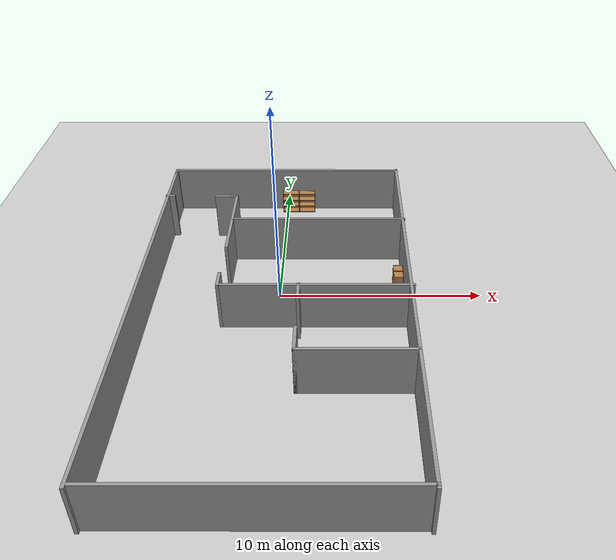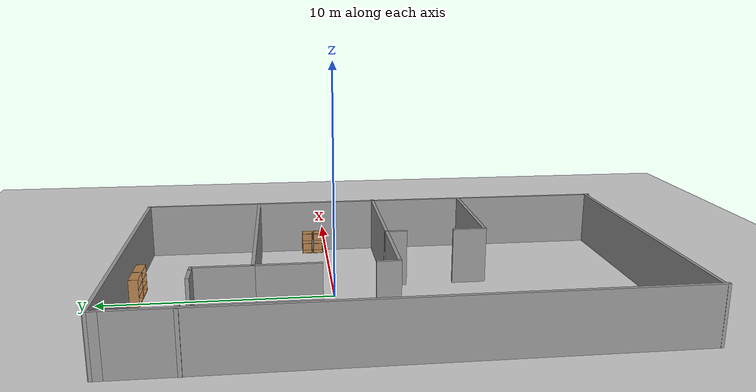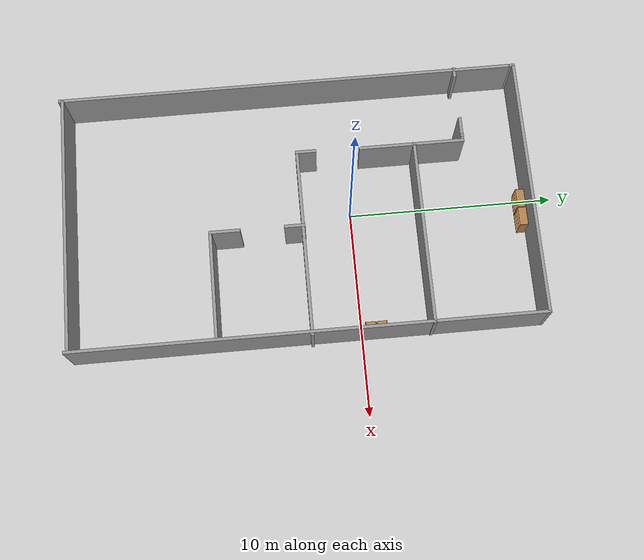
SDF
<sdf version="1.6">
 <world name="default">
  <light name="sun" type="directional">
   <pose>0 0 10 0 -0 0</pose>
   <diffuse>0.8 0.8 0.8 1</diffuse>
   <specular>0.2 0.2 0.2 1</specular>
   <attenuation>
    <range>1000</range>
    <constant>0.9</constant>
    <linear>0.01</linear>
    <quadratic>0.001</quadratic>
   </attenuation>
   <direction>-0.5 0.1 -0.9</direction>
  </light>
  <model name="ground_plane">
   <static>1</static>
   <link name="link">
    <collision name="collision">
     <geometry><plane><normal>0 0 1</normal><size>100 100</size></plane></geometry>
     <surface><friction><ode><mu>100</mu><mu2>50</mu2></ode></friction></surface>
    </collision>
    <visual name="visual">
     <cast_shadows>0</cast_shadows>
     <geometry><plane><normal>0 0 1</normal><size>100 100</size></plane></geometry>
     <material>
      <script><uri>file://media/materials/scripts/gazebo.material</uri><name>Gazebo/Grey</name></script>
     </material>
    </visual>
   </link>
  </model>
  <gravity>0 0 -9.8</gravity>
  <magnetic_field>6e-06 2.3e-05 -4.2e-05</magnetic_field>
  <atmosphere type="adiabatic"/>
  <physics name="default_physics" default="0" type="ode">
   <max_step_size>0.001</max_step_size>
   <real_time_factor>1</real_time_factor>
   <real_time_update_rate>1000</real_time_update_rate>
  </physics>
  <scene><ambient>0.4 0.4 0.4 1</ambient><background>0.7 0.7 0.7 1</background><shadows>1</shadows></scene>
  <audio><device>default</device></audio>
  <spherical_coordinates>
   <surface_model>EARTH_WGS84</surface_model>
   <latitude_deg>0</latitude_deg>
   <longitude_deg>0</longitude_deg>
   <elevation>0</elevation>
   <heading_deg>0</heading_deg>
  </spherical_coordinates>
  <model name="similar_home">
   <pose>-0.00802 -2.54677 0 0 -0 0</pose>
   <link name="Wall_36">
    <collision name="Wall_36_Collision">
     <geometry><box><size>22.2411 0.15 2.5</size></box></geometry>
     <pose>0 0 1.25 0 -0 0</pose>
    </collision>
    <visual name="Wall_36_Visual">
     <pose>0 0 1.25 0 -0 0</pose>
     <geometry><box><size>22.2411 0.15 2.5</size></box></geometry>
     <material>
      <script><uri>file://media/materials/scripts/gazebo.material</uri><name>Gazebo/Grey</name></script>
      <ambient>1 1 1 1</ambient>
     </material>
     <meta><layer>0</layer></meta>
    </visual>
    <pose>-6.31271 -0.124102 0 0 -0 -1.5708</pose>
   </link>
   <link name="Wall_37">
    <collision name="Wall_37_Collision">
     <geometry><box><size>12.6951 0.15 2.5</size></box></geometry>
     <pose>0 0 1.25 0 -0 0</pose>
    </collision>
    <visual name="Wall_37_Visual">
     <pose>0 0 1.25 0 -0 0</pose>
     <geometry><box><size>12.6951 0.15 2.5</size></box></geometry>
     <material>
      <script><uri>file://media/materials/scripts/gazebo.material</uri><name>Gazebo/Grey</name></script>
      <ambient>1 1 1 1</ambient>
     </material>
     <meta><layer>0</layer></meta>
    </visual>
    <pose>-0.040178 -11.0513 0 0 -0 -0.000367</pose>
   </link>
   <link name="Wall_38">
    <collision name="Wall_38_Collision">
     <geometry><box><size>22.4985 0.15 2.5</size></box></geometry>
     <pose>0 0 1.25 0 -0 0</pose>
    </collision>
    <visual name="Wall_38_Visual">
     <pose>0 0 1.25 0 -0 0</pose>
     <geometry><box><size>22.4985 0.15 2.5</size></box></geometry>
     <material>
      <script><uri>file://media/materials/scripts/gazebo.material</uri><name>Gazebo/Grey</name></script>
      <ambient>1 1 1 1</ambient>
     </material>
     <meta><layer>0</layer></meta>
    </visual>
    <pose>6.23236 0 0 0 -0 1.5708</pose>
   </link>
   <link name="Wall_39">
    <collision name="Wall_39_Collision">
     <geometry><box><size>12.6951 0.15 2.5</size></box></geometry>
     <pose>0 0 1.25 0 -0 0</pose>
    </collision>
    <visual name="Wall_39_Visual">
     <pose>0 0 1.25 0 -0 0</pose>
     <geometry><box><size>12.6951 0.15 2.5</size></box></geometry>
     <material>
      <script><uri>file://media/materials/scripts/gazebo.material</uri><name>Gazebo/Grey</name></script>
      <ambient>1 1 1 1</ambient>
     </material>
     <meta><layer>0</layer></meta>
    </visual>
    <pose>-0.040178 11.1692 0 0 -0 3.14123</pose>
   </link>
   <link name="Wall_40">
    <collision name="Wall_40_Collision">
     <geometry><box><size>0.5 0.15 2.5</size></box></geometry>
     <pose>0 0 1.25 0 -0 0</pose>
    </collision>
    <visual name="Wall_40_Visual">
     <pose>0 0 1.25 0 -0 0</pose>
     <geometry><box><size>0.5 0.15 2.5</size></box></geometry>
     <material>
      <script><uri>file://media/materials/scripts/gazebo.material</uri><name>Gazebo/Grey</name></script>
      <ambient>1 1 1 1</ambient>
     </material>
     <meta><layer>0</layer></meta>
    </visual>
    <pose>-6.31271 10.9965 0 0 -0 -1.5708</pose>
   </link>
   <link name="Wall_42">
    <collision name="Wall_42_Collision">
     <geometry><box><size>0.5 0.15 2.5</size></box></geometry>
     <pose>0 0 1.25 0 -0 0</pose>
    </collision>
    <visual name="Wall_42_Visual">
     <pose>0 0 1.25 0 -0 0</pose>
     <geometry><box><size>0.5 0.15 2.5</size></box></geometry>
     <material>
      <script><uri>file://media/materials/scripts/gazebo.material</uri><name>Gazebo/Grey</name></script>
      <ambient>1 1 1 1</ambient>
     </material>
     <meta><layer>0</layer></meta>
    </visual>
    <pose>-6.17716 8.22602 0 0 -0 0</pose>
   </link>
   <link name="Wall_47">
    <collision name="Wall_47_Collision">
     <geometry><box><size>0.15 0.15 2.5</size></box></geometry>
     <pose>0 0 1.25 0 -0 0</pose>
    </collision>
    <visual name="Wall_47_Visual">
     <pose>0 0 1.25 0 -0 0</pose>
     <geometry><box><size>0.15 0.15 2.5</size></box></geometry>
     <material>
      <script><uri>file://media/materials/scripts/gazebo.material</uri><name>Gazebo/Grey</name></script>
      <ambient>1 1 1 1</ambient>
     </material>
     <meta><layer>0</layer></meta>
    </visual>
    <pose>-2.82715 8.20113 0 0 -0 0</pose>
   </link>
   <link name="Wall_52">
    <collision name="Wall_52_Collision">
     <geometry><box><size>1.25 0.15 2.5</size></box></geometry>
     <pose>0 0 1.25 0 -0 0</pose>
    </collision>
    <visual name="Wall_52_Visual">
     <pose>0 0 1.25 0 -0 0</pose>
     <geometry><box><size>1.25 0.15 2.5</size></box></geometry>
     <material>
      <script><uri>file://media/materials/scripts/gazebo.material</uri><name>Gazebo/Grey</name></script>
      <ambient>1 1 1 1</ambient>
     </material>
     <meta><layer>0</layer></meta>
    </visual>
    <pose>-3.12258 8.19348 0 0 -0 0</pose>
   </link>
   <link name="Wall_53">
    <collision name="Wall_53_Collision">
     <geometry><box><size>2.5 0.15 2.5</size></box></geometry>
     <pose>0 0 1.25 0 -0 0</pose>
    </collision>
    <visual name="Wall_53_Visual">
     <pose>0 0 1.25 0 -0 0</pose>
     <geometry><box><size>2.5 0.15 2.5</size></box></geometry>
     <material>
      <script><uri>file://media/materials/scripts/gazebo.material</uri><name>Gazebo/Grey</name></script>
      <ambient>1 1 1 1</ambient>
     </material>
     <meta><layer>0</layer></meta>
    </visual>
    <pose>-2.57258 7.01849 0 0 -0 -1.5708</pose>
   </link>
   <link name="Wall_54">
    <collision name="Wall_54_Collision">
     <geometry><box><size>9 0.15 2.5</size></box></geometry>
     <pose>0 0 1.25 0 -0 0</pose>
    </collision>
    <visual name="Wall_54_Visual">
     <pose>0 0 1.25 0 -0 0</pose>
     <geometry><box><size>9 0.15 2.5</size></box></geometry>
     <material>
      <script><uri>file://media/materials/scripts/gazebo.material</uri><name>Gazebo/Grey</name></script>
      <ambient>1 1 1 1</ambient>
     </material>
     <meta><layer>0</layer></meta>
    </visual>
    <pose>1.85242 5.84348 0 0 -0 0</pose>
   </link>
   <link name="Wall_56">
    <collision name="Wall_56_Collision">
     <geometry><box><size>2.75 0.15 2.5</size></box></geometry>
     <pose>0 0 1.25 0 -0 0</pose>
    </collision>
    <visual name="Wall_56_Visual">
     <pose>0 0 1.25 0 -0 0</pose>
     <geometry><box><size>2.75 0.15 2.5</size></box></geometry>
     <material>
      <script><uri>file://media/materials/scripts/gazebo.material</uri><name>Gazebo/Grey</name></script>
      <ambient>1 1 1 1</ambient>
     </material>
     <meta><layer>0</layer></meta>
    </visual>
    <pose>-2.57258 4.54348 0 0 -0 -1.5708</pose>
   </link>
   <link name="Wall_58">
    <collision name="Wall_58_Collision">
     <geometry><box><size>9 0.15 2.5</size></box></geometry>
     <pose>0 0 1.25 0 -0 0</pose>
    </collision>
    <visual name="Wall_58_Visual">
     <pose>0 0 1.25 0 -0 0</pose>
     <geometry><box><size>9 0.15 2.5</size></box></geometry>
     <material>
      <script><uri>file://media/materials/scripts/gazebo.material</uri><name>Gazebo/Grey</name></script>
      <ambient>1 1 1 1</ambient>
     </material>
     <meta><layer>0</layer></meta>
    </visual>
    <pose>1.92716 0.163391 0 0 -0 0</pose>
   </link>
   <link name="Wall_60">
    <collision name="Wall_60_Collision">
     <geometry><box><size>1 0.15 2.5</size></box></geometry>
     <pose>0 0 1.25 0 -0 0</pose>
    </collision>
    <visual name="Wall_60_Visual">
     <pose>0 0 1.25 0 -0 0</pose>
     <geometry><box><size>1 0.15 2.5</size></box></geometry>
     <material>
      <script><uri>file://media/materials/scripts/gazebo.material</uri><name>Gazebo/Grey</name></script>
      <ambient>1 1 1 1</ambient>
     </material>
     <meta><layer>0</layer></meta>
    </visual>
    <pose>-2.62983 0.58581 0 0 -0 -1.5708</pose>
   </link>
   <link name="Wall_62">
    <collision name="Wall_62_Collision">
     <geometry><box><size>1 0.15 2.5</size></box></geometry>
     <pose>0 0 1.25 0 -0 0</pose>
    </collision>
    <visual name="Wall_62_Visual">
     <pose>0 0 1.25 0 -0 0</pose>
     <geometry><box><size>1 0.15 2.5</size></box></geometry>
     <material>
      <script><uri>file://media/materials/scripts/gazebo.material</uri><name>Gazebo/Grey</name></script>
      <ambient>1 1 1 1</ambient>
     </material>
     <meta><layer>0</layer></meta>
    </visual>
    <pose>1.07295 -0.233522 0 0 -0 -1.5708</pose>
   </link>
   <link name="Wall_64">
    <collision name="Wall_64_Collision">
     <geometry><box><size>1.5 0.15 2.5</size></box></geometry>
     <pose>0 0 1.25 0 -0 0</pose>
    </collision>
    <visual name="Wall_64_Visual">
     <pose>0 0 1.25 0 -0 0</pose>
     <geometry><box><size>1.5 0.15 2.5</size></box></geometry>
     <material>
      <script><uri>file://media/materials/scripts/gazebo.material</uri><name>Gazebo/Grey</name></script>
      <ambient>1 1 1 1</ambient>
     </material>
     <meta><layer>0</layer></meta>
    </visual>
    <pose>1.07295 -3.56046 0 0 -0 -1.5708</pose>
   </link>
   <link name="Wall_65">
    <collision name="Wall_65_Collision">
     <geometry><box><size>5.25 0.15 2.5</size></box></geometry>
     <pose>0 0 1.25 0 -0 0</pose>
    </collision>
    <visual name="Wall_65_Visual">
     <pose>0 0 1.25 0 -0 0</pose>
     <geometry><box><size>5.25 0.15 2.5</size></box></geometry>
     <material>
      <script><uri>file://media/materials/scripts/gazebo.material</uri><name>Gazebo/Grey</name></script>
      <ambient>1 1 1 1</ambient>
     </material>
     <meta><layer>0</layer></meta>
    </visual>
    <pose>3.62295 -4.23546 0 0 -0 0</pose>
   </link>
   <static>1</static>
  </model>
  <model name="bookshelf">
   <static>1</static>
   <link name="link">
    <inertial><mass>1</mass></inertial>
    <collision name="back">
     <pose>0 0.005 0.6 0 -0 0</pose>
     <geometry><box><size>0.9 0.01 1.2</size></box></geometry>
    </collision>
    <visual name="visual1">
     <pose>0 0.005 0.6 0 -0 0</pose>
     <geometry><box><size>0.9 0.01 1.2</size></box></geometry>
     <material>
      <script><uri>file://media/materials/scripts/gazebo.material</uri><name>Gazebo/Wood</name></script>
     </material>
    </visual>
    <collision name="left_side">
     <pose>0.45 -0.195 0.6 0 -0 0</pose>
     <geometry><box><size>0.02 0.4 1.2</size></box></geometry>
    </collision>
    <visual name="visual2">
     <pose>0.45 -0.195 0.6 0 -0 0</pose>
     <geometry><box><size>0.02 0.4 1.2</size></box></geometry>
     <material>
      <script><uri>file://media/materials/scripts/gazebo.material</uri><name>Gazebo/Wood</name></script>
     </material>
    </visual>
    <collision name="right_side">
     <pose>-0.45 -0.195 0.6 0 -0 0</pose>
     <geometry><box><size>0.02 0.4 1.2</size></box></geometry>
    </collision>
    <visual name="visual3">
     <pose>-0.45 -0.195 0.6 0 -0 0</pose>
     <geometry><box><size>0.02 0.4 1.2</size></box></geometry>
     <material>
      <script><uri>file://media/materials/scripts/gazebo.material</uri><name>Gazebo/Wood</name></script>
     </material>
    </visual>
    <collision name="bottom">
     <pose>0 -0.195 0.03 0 -0 0</pose>
     <geometry><box><size>0.88 0.4 0.06</size></box></geometry>
    </collision>
    <visual name="visual4">
     <pose>0 -0.195 0.03 0 -0 0</pose>
     <geometry><box><size>0.88 0.4 0.06</size></box></geometry>
     <material>
      <script><uri>file://media/materials/scripts/gazebo.material</uri><name>Gazebo/Wood</name></script>
     </material>
    </visual>
    <collision name="top">
     <pose>0 -0.195 1.19 0 -0 0</pose>
     <geometry><box><size>0.88 0.4 0.02</size></box></geometry>
    </collision>
    <visual name="visual5">
     <pose>0 -0.195 1.19 0 -0 0</pose>
     <geometry><box><size>0.88 0.4 0.02</size></box></geometry>
     <material>
      <script><uri>file://media/materials/scripts/gazebo.material</uri><name>Gazebo/Wood</name></script>
     </material>
    </visual>
    <collision name="low_shelf">
     <pose>0 -0.195 0.43 0 -0 0</pose>
     <geometry><box><size>0.88 0.4 0.02</size></box></geometry>
    </collision>
    <visual name="visual6">
     <pose>0 -0.195 0.43 0 -0 0</pose>
     <geometry><box><size>0.88 0.4 0.02</size></box></geometry>
     <material>
      <script><uri>file://media/materials/scripts/gazebo.material</uri><name>Gazebo/Wood</name></script>
     </material>
    </visual>
    <collision name="high_shelf">
     <pose>0 -0.195 0.8 0 -0 0</pose>
     <geometry><box><size>0.88 0.4 0.02</size></box></geometry>
    </collision>
    <visual name="visual7">
     <pose>0 -0.195 0.8 0 -0 0</pose>
     <geometry><box><size>0.88 0.4 0.02</size></box></geometry>
     <material>
      <script><uri>file://media/materials/scripts/gazebo.material</uri><name>Gazebo/Wood</name></script>
     </material>
    </visual>
   </link>
   <pose>0.171791 8.50379 0 0 -0 0</pose>
  </model>
  <model name="bookshelf_0">
   <static>1</static>
   <link name="link">
    <inertial><mass>1</mass></inertial>
    <collision name="back">
     <pose>0 0.005 0.6 0 -0 0</pose>
     <geometry><box><size>0.9 0.01 1.2</size></box></geometry>
    </collision>
    <visual name="visual1">
     <pose>0 0.005 0.6 0 -0 0</pose>
     <geometry><box><size>0.9 0.01 1.2</size></box></geometry>
     <material>
      <script><uri>file://media/materials/scripts/gazebo.material</uri><name>Gazebo/Wood</name></script>
     </material>
    </visual>
    <collision name="left_side">
     <pose>0.45 -0.195 0.6 0 -0 0</pose>
     <geometry><box><size>0.02 0.4 1.2</size></box></geometry>
    </collision>
    <visual name="visual2">
     <pose>0.45 -0.195 0.6 0 -0 0</pose>
     <geometry><box><size>0.02 0.4 1.2</size></box></geometry>
     <material>
      <script><uri>file://media/materials/scripts/gazebo.material</uri><name>Gazebo/Wood</name></script>
     </material>
    </visual>
    <collision name="right_side">
     <pose>-0.45 -0.195 0.6 0 -0 0</pose>
     <geometry><box><size>0.02 0.4 1.2</size></box></geometry>
    </collision>
    <visual name="visual3">
     <pose>-0.45 -0.195 0.6 0 -0 0</pose>
     <geometry><box><size>0.02 0.4 1.2</size></box></geometry>
     <material>
      <script><uri>file://media/materials/scripts/gazebo.material</uri><name>Gazebo/Wood</name></script>
     </material>
    </visual>
    <collision name="bottom">
     <pose>0 -0.195 0.03 0 -0 0</pose>
     <geometry><box><size>0.88 0.4 0.06</size></box></geometry>
    </collision>
    <visual name="visual4">
     <pose>0 -0.195 0.03 0 -0 0</pose>
     <geometry><box><size>0.88 0.4 0.06</size></box></geometry>
     <material>
      <script><uri>file://media/materials/scripts/gazebo.material</uri><name>Gazebo/Wood</name></script>
     </material>
    </visual>
    <collision name="top">
     <pose>0 -0.195 1.19 0 -0 0</pose>
     <geometry><box><size>0.88 0.4 0.02</size></box></geometry>
    </collision>
    <visual name="visual5">
     <pose>0 -0.195 1.19 0 -0 0</pose>
     <geometry><box><size>0.88 0.4 0.02</size></box></geometry>
     <material>
      <script><uri>file://media/materials/scripts/gazebo.material</uri><name>Gazebo/Wood</name></script>
     </material>
    </visual>
    <collision name="low_shelf">
     <pose>0 -0.195 0.43 0 -0 0</pose>
     <geometry><box><size>0.88 0.4 0.02</size></box></geometry>
    </collision>
    <visual name="visual6">
     <pose>0 -0.195 0.43 0 -0 0</pose>
     <geometry><box><size>0.88 0.4 0.02</size></box></geometry>
     <material>
      <script><uri>file://media/materials/scripts/gazebo.material</uri><name>Gazebo/Wood</name></script>
     </material>
    </visual>
    <collision name="high_shelf">
     <pose>0 -0.195 0.8 0 -0 0</pose>
     <geometry><box><size>0.88 0.4 0.02</size></box></geometry>
    </collision>
    <visual name="visual7">
     <pose>0 -0.195 0.8 0 -0 0</pose>
     <geometry><box><size>0.88 0.4 0.02</size></box></geometry>
     <material>
      <script><uri>file://media/materials/scripts/gazebo.material</uri><name>Gazebo/Wood</name></script>
     </material>
    </visual>
   </link>
   <pose>1.10232 8.49957 0 0 -0 0</pose>
  </model>
  <model name="cabinet">
   <static>1</static>
   <link name="cabinet_bottom_plate">
    <inertial>
     <pose>0 0 -1 0 -0 0</pose>
     <inertia><ixx>2.05</ixx><ixy>0</ixy><ixz>0</ixz><iyy>2.05</iyy><iyz>0</iyz><izz>2.05</izz></inertia>
     <mass>25</mass>
    </inertial>
    <collision name="cabinet_bottom_plate_geom">
     <pose>0 0 0.01 0 -0 0</pose>
     <geometry><box><size>0.45 0.45 0.02</size></box></geometry>
    </collision>
    <visual name="cabinet_bottom_plate_geom_visual">
     <pose>0 0 0.01 0 -0 0</pose>
     <geometry><box><size>0.45 0.45 0.02</size></box></geometry>
     <material>
      <script><uri>file://media/materials/scripts/gazebo.material</uri><name>Gazebo/Wood</name></script>
     </material>
    </visual>
    <collision name="cabinet_bottom_plate_geom_cabinet_back_plate">
     <pose>0.235 0 0.51 0 -0 0</pose>
     <geometry><box><size>0.02 0.45 1.02</size></box></geometry>
    </collision>
    <visual name="cabinet_bottom_plate_geom_cabinet_back_plate_visual">
     <pose>0.235 0 0.51 0 -0 0</pose>
     <geometry><box><size>0.02 0.45 1.02</size></box></geometry>
     <material>
      <script><uri>file://media/materials/scripts/gazebo.material</uri><name>Gazebo/Wood</name></script>
     </material>
    </visual>
    <collision name="cabinet_bottom_plate_geom_cabinet_left_plate">
     <pose>0 0.235 0.51 0 -0 0</pose>
     <geometry><box><size>0.45 0.02 1.02</size></box></geometry>
    </collision>
    <visual name="cabinet_bottom_plate_geom_cabinet_left_plate_visual">
     <pose>0 0.235 0.51 0 -0 0</pose>
     <geometry><box><size>0.45 0.02 1.02</size></box></geometry>
     <material>
      <script><uri>file://media/materials/scripts/gazebo.material</uri><name>Gazebo/Wood</name></script>
     </material>
    </visual>
    <collision name="cabinet_bottom_plate_geom_cabinet_middle_plate">
     <pose>0 0 0.51 0 -0 0</pose>
     <geometry><box><size>0.45 0.45 0.02</size></box></geometry>
    </collision>
    <visual name="cabinet_bottom_plate_geom_cabinet_middle_plate_visual">
     <pose>0 0 0.51 0 -0 0</pose>
     <geometry><box><size>0.45 0.45 0.02</size></box></geometry>
     <material>
      <script><uri>file://media/materials/scripts/gazebo.material</uri><name>Gazebo/Wood</name></script>
     </material>
    </visual>
    <collision name="cabinet_bottom_plate_geom_cabinet_right_plate">
     <pose>0 -0.235 0.51 0 -0 0</pose>
     <geometry><box><size>0.45 0.02 1.02</size></box></geometry>
    </collision>
    <visual name="cabinet_bottom_plate_geom_cabinet_right_plate_visual">
     <pose>0 -0.235 0.51 0 -0 0</pose>
     <geometry><box><size>0.45 0.02 1.02</size></box></geometry>
     <material>
      <script><uri>file://media/materials/scripts/gazebo.material</uri><name>Gazebo/Wood</name></script>
     </material>
    </visual>
    <collision name="cabinet_bottom_plate_geom_cabinet_top_plate">
     <pose>0 0 1.01 0 -0 0</pose>
     <geometry><box><size>0.45 0.45 0.02</size></box></geometry>
    </collision>
    <visual name="cabinet_bottom_plate_geom_cabinet_top_plate_visual">
     <pose>0 0 1.01 0 -0 0</pose>
     <geometry><box><size>0.45 0.45 0.02</size></box></geometry>
     <material>
      <script><uri>file://media/materials/scripts/gazebo.material</uri><name>Gazebo/Wood</name></script>
     </material>
    </visual>
   </link>
   <pose>5.89618 0.956641 0 0 -0 0</pose>
  </model>
  <model name="cabinet_0">
   <static>1</static>
   <link name="cabinet_bottom_plate">
    <inertial>
     <pose>0 0 -1 0 -0 0</pose>
     <inertia><ixx>2.05</ixx><ixy>0</ixy><ixz>0</ixz><iyy>2.05</iyy><iyz>0</iyz><izz>2.05</izz></inertia>
     <mass>25</mass>
    </inertial>
    <collision name="cabinet_bottom_plate_geom">
     <pose>0 0 0.01 0 -0 0</pose>
     <geometry><box><size>0.45 0.45 0.02</size></box></geometry>
    </collision>
    <visual name="cabinet_bottom_plate_geom_visual">
     <pose>0 0 0.01 0 -0 0</pose>
     <geometry><box><size>0.45 0.45 0.02</size></box></geometry>
     <material>
      <script><uri>file://media/materials/scripts/gazebo.material</uri><name>Gazebo/Wood</name></script>
     </material>
    </visual>
    <collision name="cabinet_bottom_plate_geom_cabinet_back_plate">
     <pose>0.235 0 0.51 0 -0 0</pose>
     <geometry><box><size>0.02 0.45 1.02</size></box></geometry>
    </collision>
    <visual name="cabinet_bottom_plate_geom_cabinet_back_plate_visual">
     <pose>0.235 0 0.51 0 -0 0</pose>
     <geometry><box><size>0.02 0.45 1.02</size></box></geometry>
     <material>
      <script><uri>file://media/materials/scripts/gazebo.material</uri><name>Gazebo/Wood</name></script>
     </material>
    </visual>
    <collision name="cabinet_bottom_plate_geom_cabinet_left_plate">
     <pose>0 0.235 0.51 0 -0 0</pose>
     <geometry><box><size>0.45 0.02 1.02</size></box></geometry>
    </collision>
    <visual name="cabinet_bottom_plate_geom_cabinet_left_plate_visual">
     <pose>0 0.235 0.51 0 -0 0</pose>
     <geometry><box><size>0.45 0.02 1.02</size></box></geometry>
     <material>
      <script><uri>file://media/materials/scripts/gazebo.material</uri><name>Gazebo/Wood</name></script>
     </material>
    </visual>
    <collision name="cabinet_bottom_plate_geom_cabinet_middle_plate">
     <pose>0 0 0.51 0 -0 0</pose>
     <geometry><box><size>0.45 0.45 0.02</size></box></geometry>
    </collision>
    <visual name="cabinet_bottom_plate_geom_cabinet_middle_plate_visual">
     <pose>0 0 0.51 0 -0 0</pose>
     <geometry><box><size>0.45 0.45 0.02</size></box></geometry>
     <material>
      <script><uri>file://media/materials/scripts/gazebo.material</uri><name>Gazebo/Wood</name></script>
     </material>
    </visual>
    <collision name="cabinet_bottom_plate_geom_cabinet_right_plate">
     <pose>0 -0.235 0.51 0 -0 0</pose>
     <geometry><box><size>0.45 0.02 1.02</size></box></geometry>
    </collision>
    <visual name="cabinet_bottom_plate_geom_cabinet_right_plate_visual">
     <pose>0 -0.235 0.51 0 -0 0</pose>
     <geometry><box><size>0.45 0.02 1.02</size></box></geometry>
     <material>
      <script><uri>file://media/materials/scripts/gazebo.material</uri><name>Gazebo/Wood</name></script>
     </material>
    </visual>
    <collision name="cabinet_bottom_plate_geom_cabinet_top_plate">
     <pose>0 0 1.01 0 -0 0</pose>
     <geometry><box><size>0.45 0.45 0.02</size></box></geometry>
    </collision>
    <visual name="cabinet_bottom_plate_geom_cabinet_top_plate_visual">
     <pose>0 0 1.01 0 -0 0</pose>
     <geometry><box><size>0.45 0.45 0.02</size></box></geometry>
     <material>
      <script><uri>file://media/materials/scripts/gazebo.material</uri><name>Gazebo/Wood</name></script>
     </material>
    </visual>
   </link>
   <pose>5.89232 0.416212 0 0 -0 0</pose>
  </model>
 </world>
</sdf>
